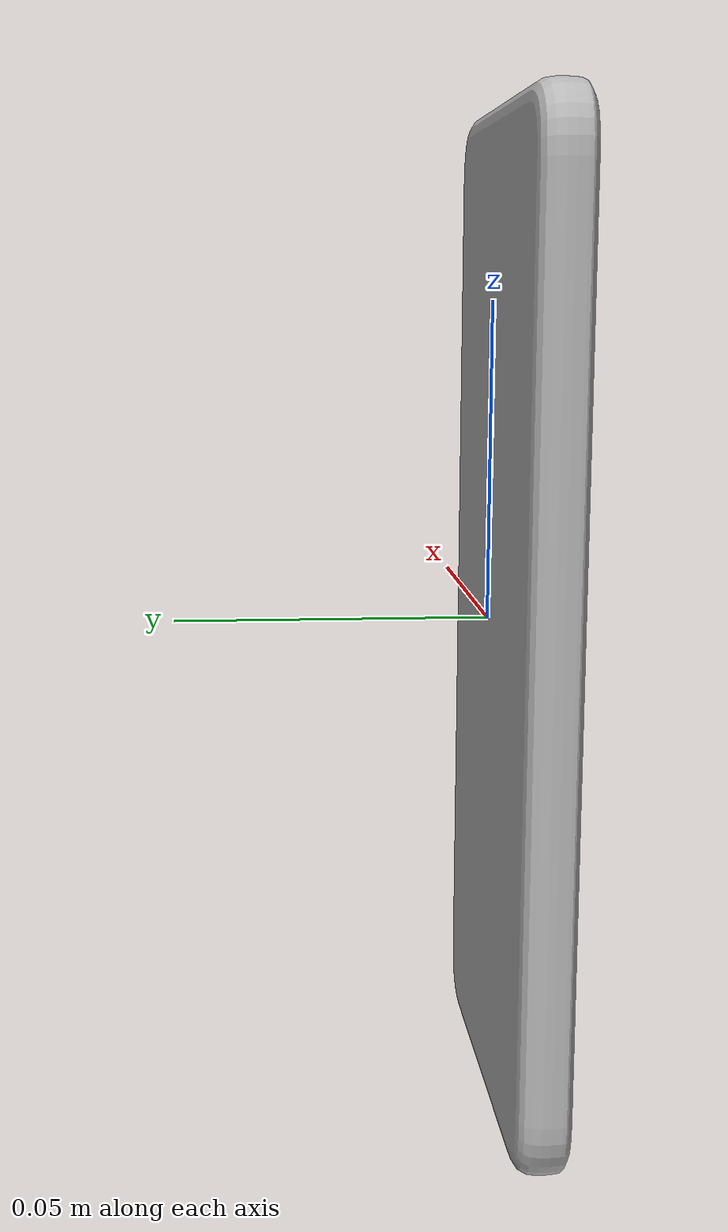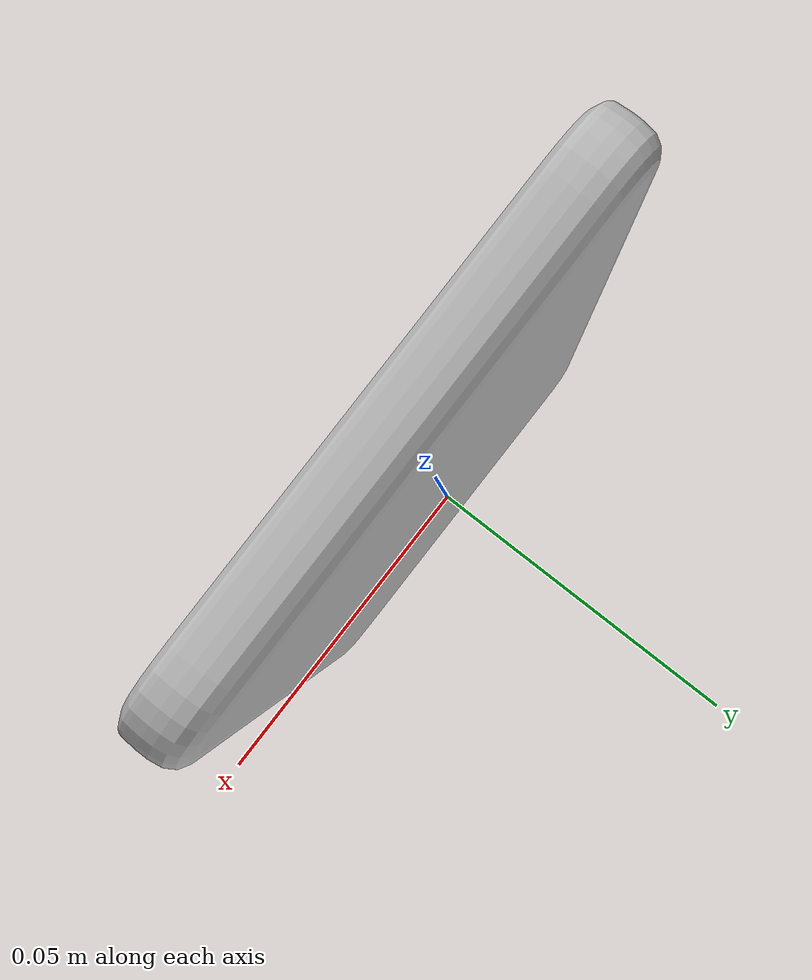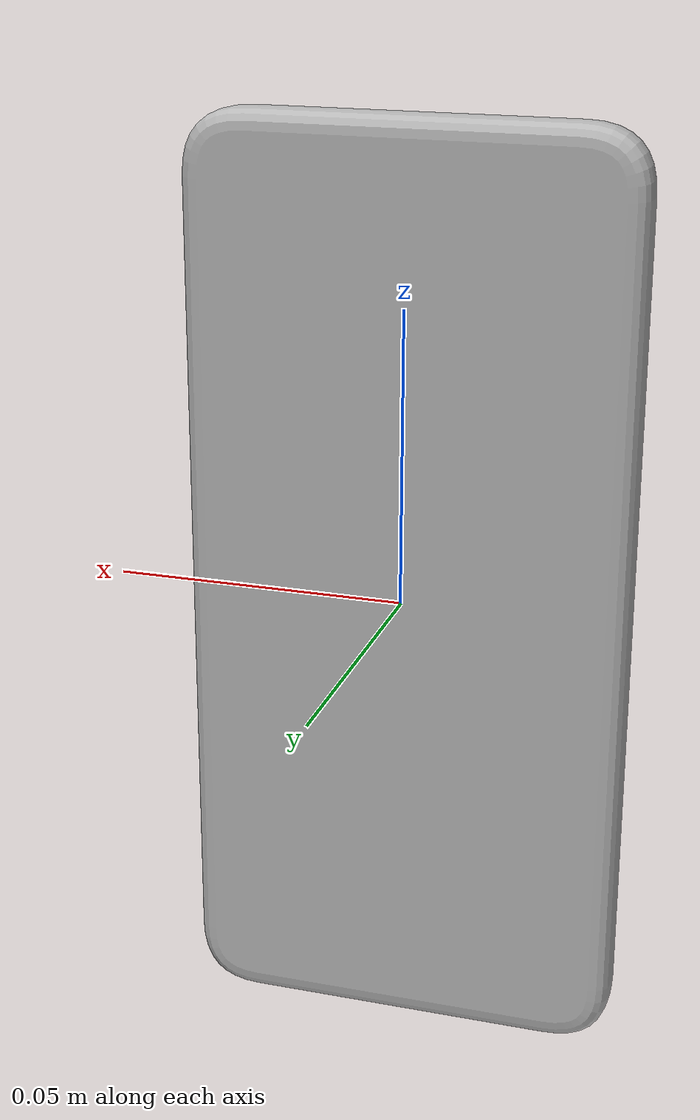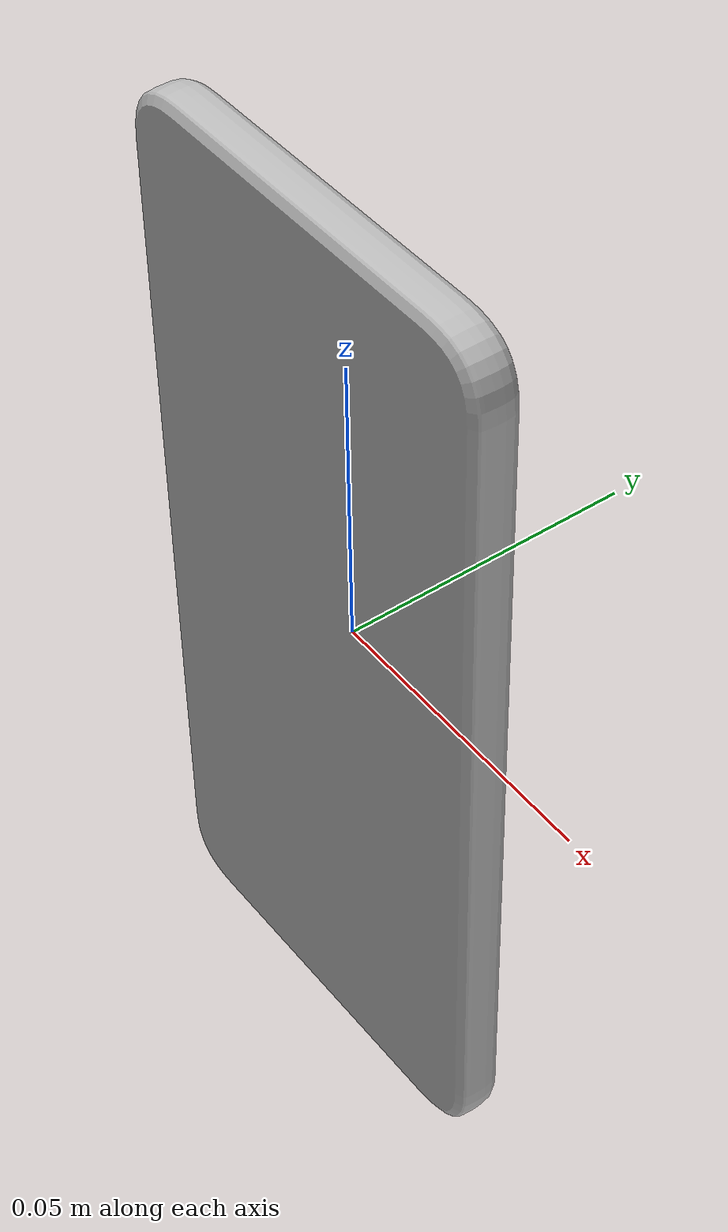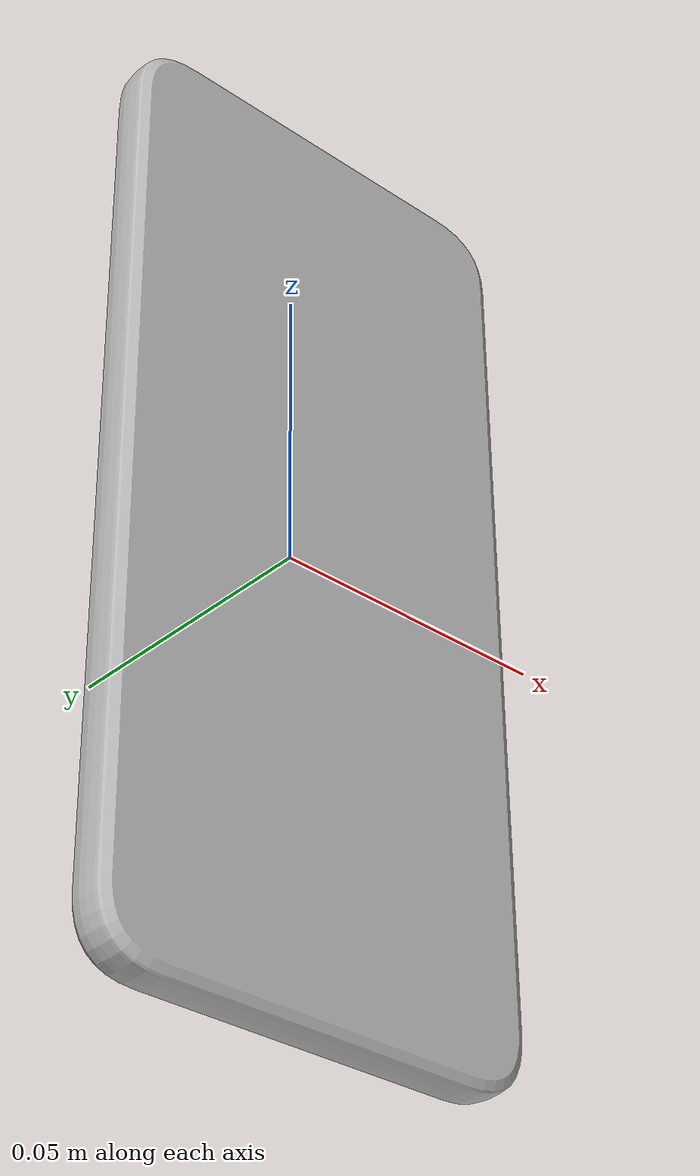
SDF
<?xml version='1.0' ?>
<sdf version='1.6'>
  <model name='Samsung J8 Black'>
    <pose>0 0 0 0 0 0</pose>
    <static>true</static>
    <link name="link">
      <collision name="collision">
        <geometry>
          <mesh>
            <uri>model://Samsung J8 Black/meshes/phone.dae</uri>
         </mesh>
        </geometry>
      </collision>
      <visual name="visual">
        <geometry>
          <mesh>
            <uri>model://Samsung J8 Black/meshes/phone.dae</uri>
         </mesh>
        </geometry>
      </visual>
    </link>
  </model>
 </sdf>
